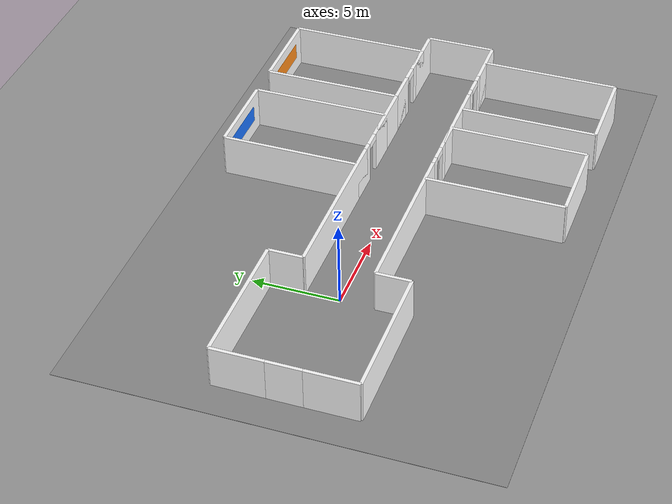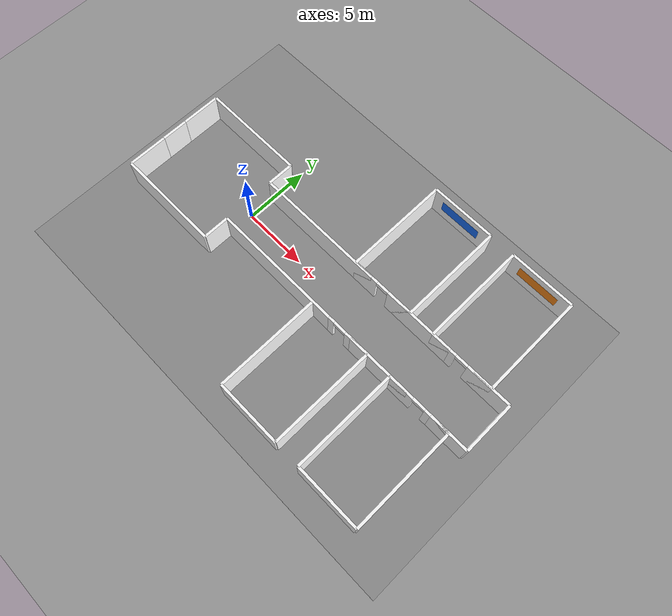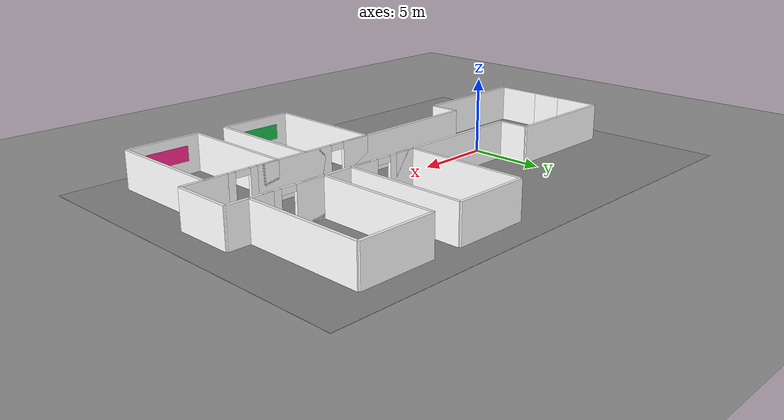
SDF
<sdf version="1.9">
 <world name="default">
  <model name="ground_plane">
   <static>1</static>
   <link name="link">
    <collision name="collision">
     <geometry><plane><normal>0 0 1</normal><size>100 100</size></plane></geometry>
     <surface>
      <contact><collide_bitmask>65535</collide_bitmask></contact>
      <friction><ode><mu>100</mu><mu2>50</mu2></ode></friction>
     </surface>
    </collision>
    <visual name="visual">
     <cast_shadows>0</cast_shadows>
     <geometry><plane><normal>0 0 1</normal><size>100 100</size></plane></geometry>
     <material><ambient>0.6 0.6 0.6 1</ambient><diffuse>0.6 0.6 0.6 1</diffuse></material>
    </visual>
   </link>
  </model>
  <model name="corridor_rooms">
   <static>true</static>
   <link name="link">
    <collision name="floor_col">
     <pose>7.0 0 0.01 0 0 0</pose>
     <geometry><box><size>34.0 24.0 0.02</size></box></geometry>
    </collision>
    <visual name="floor_vis">
     <pose>7.0 0 0.01 0 0 0</pose>
     <geometry><box><size>34.0 24.0 0.02</size></box></geometry>
     <material><ambient>0.55 0.55 0.55 1</ambient><diffuse>0.55 0.55 0.55 1</diffuse></material>
    </visual>
    <collision name="lobby_north_col">
     <pose>-4.0 4.0 1.25 0 0 0.0</pose>
     <geometry><box><size>8.0 0.2 2.5</size></box></geometry>
    </collision>
    <visual name="lobby_north_vis">
     <pose>-4.0 4.0 1.25 0 0 0.0</pose>
     <geometry><box><size>8.0 0.2 2.5</size></box></geometry>
     <material><ambient>1 1 1 1</ambient><diffuse>1 1 1 1</diffuse></material>
    </visual>
    <collision name="lobby_south_col">
     <pose>-4.0 -4.0 1.25 0 0 0.0</pose>
     <geometry><box><size>8.0 0.2 2.5</size></box></geometry>
    </collision>
    <visual name="lobby_south_vis">
     <pose>-4.0 -4.0 1.25 0 0 0.0</pose>
     <geometry><box><size>8.0 0.2 2.5</size></box></geometry>
     <material><ambient>1 1 1 1</ambient><diffuse>1 1 1 1</diffuse></material>
    </visual>
    <collision name="lobby_west_a_col">
     <pose>-8.0 2.5 1.25 0 0 0.0</pose>
     <geometry><box><size>0.2 3.0 2.5</size></box></geometry>
    </collision>
    <visual name="lobby_west_a_vis">
     <pose>-8.0 2.5 1.25 0 0 0.0</pose>
     <geometry><box><size>0.2 3.0 2.5</size></box></geometry>
     <material><ambient>1 1 1 1</ambient><diffuse>1 1 1 1</diffuse></material>
    </visual>
    <collision name="lobby_west_b_col">
     <pose>-8.0 -2.5 1.25 0 0 0.0</pose>
     <geometry><box><size>0.2 3.0 2.5</size></box></geometry>
    </collision>
    <visual name="lobby_west_b_vis">
     <pose>-8.0 -2.5 1.25 0 0 0.0</pose>
     <geometry><box><size>0.2 3.0 2.5</size></box></geometry>
     <material><ambient>1 1 1 1</ambient><diffuse>1 1 1 1</diffuse></material>
    </visual>
    <collision name="lobby_west_entrance_col">
     <pose>-8.0 0.0 1.25 0 0 0.0</pose>
     <geometry><box><size>0.2 2.0 2.5</size></box></geometry>
    </collision>
    <visual name="lobby_west_entrance_vis">
     <pose>-8.0 0.0 1.25 0 0 0.0</pose>
     <geometry><box><size>0.2 2.0 2.5</size></box></geometry>
     <material><ambient>1 1 1 1</ambient><diffuse>1 1 1 1</diffuse></material>
    </visual>
    <collision name="lobby_east_a_col">
     <pose>0.0 3.0 1.25 0 0 0.0</pose>
     <geometry><box><size>0.2 2.0 2.5</size></box></geometry>
    </collision>
    <visual name="lobby_east_a_vis">
     <pose>0.0 3.0 1.25 0 0 0.0</pose>
     <geometry><box><size>0.2 2.0 2.5</size></box></geometry>
     <material><ambient>1 1 1 1</ambient><diffuse>1 1 1 1</diffuse></material>
    </visual>
    <collision name="lobby_east_b_col">
     <pose>0.0 -3.0 1.25 0 0 0.0</pose>
     <geometry><box><size>0.2 2.0 2.5</size></box></geometry>
    </collision>
    <visual name="lobby_east_b_vis">
     <pose>0.0 -3.0 1.25 0 0 0.0</pose>
     <geometry><box><size>0.2 2.0 2.5</size></box></geometry>
     <material><ambient>1 1 1 1</ambient><diffuse>1 1 1 1</diffuse></material>
    </visual>
    <collision name="corridor_north_0_col">
     <pose>5.0 2.0 1.25 0 0 0.0</pose>
     <geometry><box><size>10.0 0.2 2.5</size></box></geometry>
    </collision>
    <visual name="corridor_north_0_vis">
     <pose>5.0 2.0 1.25 0 0 0.0</pose>
     <geometry><box><size>10.0 0.2 2.5</size></box></geometry>
     <material><ambient>1 1 1 1</ambient><diffuse>1 1 1 1</diffuse></material>
    </visual>
    <collision name="corridor_north_1_col">
     <pose>14.5 2.0 1.25 0 0 0.0</pose>
     <geometry><box><size>5.0 0.2 2.5</size></box></geometry>
    </collision>
    <visual name="corridor_north_1_vis">
     <pose>14.5 2.0 1.25 0 0 0.0</pose>
     <geometry><box><size>5.0 0.2 2.5</size></box></geometry>
     <material><ambient>1 1 1 1</ambient><diffuse>1 1 1 1</diffuse></material>
    </visual>
    <collision name="corridor_north_2_col">
     <pose>20.5 2.0 1.25 0 0 0.0</pose>
     <geometry><box><size>3.0 0.2 2.5</size></box></geometry>
    </collision>
    <visual name="corridor_north_2_vis">
     <pose>20.5 2.0 1.25 0 0 0.0</pose>
     <geometry><box><size>3.0 0.2 2.5</size></box></geometry>
     <material><ambient>1 1 1 1</ambient><diffuse>1 1 1 1</diffuse></material>
    </visual>
    <collision name="corridor_south_0_col">
     <pose>5.0 -2.0 1.25 0 0 0.0</pose>
     <geometry><box><size>10.0 0.2 2.5</size></box></geometry>
    </collision>
    <visual name="corridor_south_0_vis">
     <pose>5.0 -2.0 1.25 0 0 0.0</pose>
     <geometry><box><size>10.0 0.2 2.5</size></box></geometry>
     <material><ambient>1 1 1 1</ambient><diffuse>1 1 1 1</diffuse></material>
    </visual>
    <collision name="corridor_south_1_col">
     <pose>14.5 -2.0 1.25 0 0 0.0</pose>
     <geometry><box><size>5.0 0.2 2.5</size></box></geometry>
    </collision>
    <visual name="corridor_south_1_vis">
     <pose>14.5 -2.0 1.25 0 0 0.0</pose>
     <geometry><box><size>5.0 0.2 2.5</size></box></geometry>
     <material><ambient>1 1 1 1</ambient><diffuse>1 1 1 1</diffuse></material>
    </visual>
    <collision name="corridor_south_2_col">
     <pose>20.5 -2.0 1.25 0 0 0.0</pose>
     <geometry><box><size>3.0 0.2 2.5</size></box></geometry>
    </collision>
    <visual name="corridor_south_2_vis">
     <pose>20.5 -2.0 1.25 0 0 0.0</pose>
     <geometry><box><size>3.0 0.2 2.5</size></box></geometry>
     <material><ambient>1 1 1 1</ambient><diffuse>1 1 1 1</diffuse></material>
    </visual>
    <collision name="corridor_east_end_col">
     <pose>22.0 0.0 1.25 0 0 0.0</pose>
     <geometry><box><size>0.2 4.0 2.5</size></box></geometry>
    </collision>
    <visual name="corridor_east_end_vis">
     <pose>22.0 0.0 1.25 0 0 0.0</pose>
     <geometry><box><size>0.2 4.0 2.5</size></box></geometry>
     <material><ambient>1 1 1 1</ambient><diffuse>1 1 1 1</diffuse></material>
    </visual>
    <collision name="room_blue_doorwall_a_col">
     <pose>9.5 2.0 1.25 0 0 0.0</pose>
     <geometry><box><size>2.0 0.2 2.5</size></box></geometry>
    </collision>
    <visual name="room_blue_doorwall_a_vis">
     <pose>9.5 2.0 1.25 0 0 0.0</pose>
     <geometry><box><size>2.0 0.2 2.5</size></box></geometry>
     <material><ambient>1 1 1 1</ambient><diffuse>1 1 1 1</diffuse></material>
    </visual>
    <collision name="room_blue_doorwall_b_col">
     <pose>12.5 2.0 1.25 0 0 0.0</pose>
     <geometry><box><size>2.0 0.2 2.5</size></box></geometry>
    </collision>
    <visual name="room_blue_doorwall_b_vis">
     <pose>12.5 2.0 1.25 0 0 0.0</pose>
     <geometry><box><size>2.0 0.2 2.5</size></box></geometry>
     <material><ambient>1 1 1 1</ambient><diffuse>1 1 1 1</diffuse></material>
    </visual>
    <collision name="room_blue_backwall_col">
     <pose>11.0 10.0 1.25 0 0 0.0</pose>
     <geometry><box><size>5.0 0.2 2.5</size></box></geometry>
    </collision>
    <visual name="room_blue_backwall_vis">
     <pose>11.0 10.0 1.25 0 0 0.0</pose>
     <geometry><box><size>5.0 0.2 2.5</size></box></geometry>
     <material><ambient>1 1 1 1</ambient><diffuse>1 1 1 1</diffuse></material>
    </visual>
    <collision name="room_blue_sidewall_1_col">
     <pose>8.5 6.0 1.25 0 0 0.0</pose>
     <geometry><box><size>0.2 8.0 2.5</size></box></geometry>
    </collision>
    <visual name="room_blue_sidewall_1_vis">
     <pose>8.5 6.0 1.25 0 0 0.0</pose>
     <geometry><box><size>0.2 8.0 2.5</size></box></geometry>
     <material><ambient>1 1 1 1</ambient><diffuse>1 1 1 1</diffuse></material>
    </visual>
    <collision name="room_blue_sidewall_2_col">
     <pose>13.5 6.0 1.25 0 0 0.0</pose>
     <geometry><box><size>0.2 8.0 2.5</size></box></geometry>
    </collision>
    <visual name="room_blue_sidewall_2_vis">
     <pose>13.5 6.0 1.25 0 0 0.0</pose>
     <geometry><box><size>0.2 8.0 2.5</size></box></geometry>
     <material><ambient>1 1 1 1</ambient><diffuse>1 1 1 1</diffuse></material>
    </visual>
    <collision name="room_green_doorwall_a_col">
     <pose>9.5 -2.0 1.25 0 0 0.0</pose>
     <geometry><box><size>2.0 0.2 2.5</size></box></geometry>
    </collision>
    <visual name="room_green_doorwall_a_vis">
     <pose>9.5 -2.0 1.25 0 0 0.0</pose>
     <geometry><box><size>2.0 0.2 2.5</size></box></geometry>
     <material><ambient>1 1 1 1</ambient><diffuse>1 1 1 1</diffuse></material>
    </visual>
    <collision name="room_green_doorwall_b_col">
     <pose>12.5 -2.0 1.25 0 0 0.0</pose>
     <geometry><box><size>2.0 0.2 2.5</size></box></geometry>
    </collision>
    <visual name="room_green_doorwall_b_vis">
     <pose>12.5 -2.0 1.25 0 0 0.0</pose>
     <geometry><box><size>2.0 0.2 2.5</size></box></geometry>
     <material><ambient>1 1 1 1</ambient><diffuse>1 1 1 1</diffuse></material>
    </visual>
    <collision name="room_green_backwall_col">
     <pose>11.0 -10.0 1.25 0 0 0.0</pose>
     <geometry><box><size>5.0 0.2 2.5</size></box></geometry>
    </collision>
    <visual name="room_green_backwall_vis">
     <pose>11.0 -10.0 1.25 0 0 0.0</pose>
     <geometry><box><size>5.0 0.2 2.5</size></box></geometry>
     <material><ambient>1 1 1 1</ambient><diffuse>1 1 1 1</diffuse></material>
    </visual>
    <collision name="room_green_sidewall_1_col">
     <pose>8.5 -6.0 1.25 0 0 0.0</pose>
     <geometry><box><size>0.2 8.0 2.5</size></box></geometry>
    </collision>
    <visual name="room_green_sidewall_1_vis">
     <pose>8.5 -6.0 1.25 0 0 0.0</pose>
     <geometry><box><size>0.2 8.0 2.5</size></box></geometry>
     <material><ambient>1 1 1 1</ambient><diffuse>1 1 1 1</diffuse></material>
    </visual>
    <collision name="room_green_sidewall_2_col">
     <pose>13.5 -6.0 1.25 0 0 0.0</pose>
     <geometry><box><size>0.2 8.0 2.5</size></box></geometry>
    </collision>
    <visual name="room_green_sidewall_2_vis">
     <pose>13.5 -6.0 1.25 0 0 0.0</pose>
     <geometry><box><size>0.2 8.0 2.5</size></box></geometry>
     <material><ambient>1 1 1 1</ambient><diffuse>1 1 1 1</diffuse></material>
    </visual>
    <collision name="room_orange_doorwall_a_col">
     <pose>16.5 2.0 1.25 0 0 0.0</pose>
     <geometry><box><size>2.0 0.2 2.5</size></box></geometry>
    </collision>
    <visual name="room_orange_doorwall_a_vis">
     <pose>16.5 2.0 1.25 0 0 0.0</pose>
     <geometry><box><size>2.0 0.2 2.5</size></box></geometry>
     <material><ambient>1 1 1 1</ambient><diffuse>1 1 1 1</diffuse></material>
    </visual>
    <collision name="room_orange_doorwall_b_col">
     <pose>19.5 2.0 1.25 0 0 0.0</pose>
     <geometry><box><size>2.0 0.2 2.5</size></box></geometry>
    </collision>
    <visual name="room_orange_doorwall_b_vis">
     <pose>19.5 2.0 1.25 0 0 0.0</pose>
     <geometry><box><size>2.0 0.2 2.5</size></box></geometry>
     <material><ambient>1 1 1 1</ambient><diffuse>1 1 1 1</diffuse></material>
    </visual>
    <collision name="room_orange_backwall_col">
     <pose>18.0 10.0 1.25 0 0 0.0</pose>
     <geometry><box><size>5.0 0.2 2.5</size></box></geometry>
    </collision>
    <visual name="room_orange_backwall_vis">
     <pose>18.0 10.0 1.25 0 0 0.0</pose>
     <geometry><box><size>5.0 0.2 2.5</size></box></geometry>
     <material><ambient>1 1 1 1</ambient><diffuse>1 1 1 1</diffuse></material>
    </visual>
    <collision name="room_orange_sidewall_1_col">
     <pose>15.5 6.0 1.25 0 0 0.0</pose>
     <geometry><box><size>0.2 8.0 2.5</size></box></geometry>
    </collision>
    <visual name="room_orange_sidewall_1_vis">
     <pose>15.5 6.0 1.25 0 0 0.0</pose>
     <geometry><box><size>0.2 8.0 2.5</size></box></geometry>
     <material><ambient>1 1 1 1</ambient><diffuse>1 1 1 1</diffuse></material>
    </visual>
    <collision name="room_orange_sidewall_2_col">
     <pose>20.5 6.0 1.25 0 0 0.0</pose>
     <geometry><box><size>0.2 8.0 2.5</size></box></geometry>
    </collision>
    <visual name="room_orange_sidewall_2_vis">
     <pose>20.5 6.0 1.25 0 0 0.0</pose>
     <geometry><box><size>0.2 8.0 2.5</size></box></geometry>
     <material><ambient>1 1 1 1</ambient><diffuse>1 1 1 1</diffuse></material>
    </visual>
    <collision name="room_pink_doorwall_a_col">
     <pose>16.5 -2.0 1.25 0 0 0.0</pose>
     <geometry><box><size>2.0 0.2 2.5</size></box></geometry>
    </collision>
    <visual name="room_pink_doorwall_a_vis">
     <pose>16.5 -2.0 1.25 0 0 0.0</pose>
     <geometry><box><size>2.0 0.2 2.5</size></box></geometry>
     <material><ambient>1 1 1 1</ambient><diffuse>1 1 1 1</diffuse></material>
    </visual>
    <collision name="room_pink_doorwall_b_col">
     <pose>19.5 -2.0 1.25 0 0 0.0</pose>
     <geometry><box><size>2.0 0.2 2.5</size></box></geometry>
    </collision>
    <visual name="room_pink_doorwall_b_vis">
     <pose>19.5 -2.0 1.25 0 0 0.0</pose>
     <geometry><box><size>2.0 0.2 2.5</size></box></geometry>
     <material><ambient>1 1 1 1</ambient><diffuse>1 1 1 1</diffuse></material>
    </visual>
    <collision name="room_pink_backwall_col">
     <pose>18.0 -10.0 1.25 0 0 0.0</pose>
     <geometry><box><size>5.0 0.2 2.5</size></box></geometry>
    </collision>
    <visual name="room_pink_backwall_vis">
     <pose>18.0 -10.0 1.25 0 0 0.0</pose>
     <geometry><box><size>5.0 0.2 2.5</size></box></geometry>
     <material><ambient>1 1 1 1</ambient><diffuse>1 1 1 1</diffuse></material>
    </visual>
    <collision name="room_pink_sidewall_1_col">
     <pose>15.5 -6.0 1.25 0 0 0.0</pose>
     <geometry><box><size>0.2 8.0 2.5</size></box></geometry>
    </collision>
    <visual name="room_pink_sidewall_1_vis">
     <pose>15.5 -6.0 1.25 0 0 0.0</pose>
     <geometry><box><size>0.2 8.0 2.5</size></box></geometry>
     <material><ambient>1 1 1 1</ambient><diffuse>1 1 1 1</diffuse></material>
    </visual>
    <collision name="room_pink_sidewall_2_col">
     <pose>20.5 -6.0 1.25 0 0 0.0</pose>
     <geometry><box><size>0.2 8.0 2.5</size></box></geometry>
    </collision>
    <visual name="room_pink_sidewall_2_vis">
     <pose>20.5 -6.0 1.25 0 0 0.0</pose>
     <geometry><box><size>0.2 8.0 2.5</size></box></geometry>
     <material><ambient>1 1 1 1</ambient><diffuse>1 1 1 1</diffuse></material>
    </visual>
    <visual name="plate_blue_vis">
     <pose>11.0 9.89 1.375 1.5708 0 0.0</pose>
     <geometry><plane><size>3.25 1.0</size></plane></geometry>
     <material><ambient>0.1 0.45 1 1</ambient><diffuse>0.1 0.45 1 1</diffuse></material>
    </visual>
    <visual name="plate_green_vis">
     <pose>11.0 -9.89 1.375 1.5708 0 3.14159265</pose>
     <geometry><plane><size>3.25 1.0</size></plane></geometry>
     <material><ambient>0.1 0.75 0.3 1</ambient><diffuse>0.1 0.75 0.3 1</diffuse></material>
    </visual>
    <visual name="plate_orange_vis">
     <pose>18.0 9.89 1.375 1.5708 0 0.0</pose>
     <geometry><plane><size>3.25 1.0</size></plane></geometry>
     <material><ambient>1 0.55 0.1 1</ambient><diffuse>1 0.55 0.1 1</diffuse></material>
    </visual>
    <visual name="plate_pink_vis">
     <pose>18.0 -9.89 1.375 1.5708 0 3.14159265</pose>
     <geometry><plane><size>3.25 1.0</size></plane></geometry>
     <material><ambient>1 0.15 0.55 1</ambient><diffuse>1 0.15 0.55 1</diffuse></material>
    </visual>
   </link>
   <link name="lintels">
    <collision name="lintel_blue_col">
     <pose>11 2.0 2.3 0 0 0</pose>
     <geometry><box><size>1.0 0.2 0.4</size></box></geometry>
    </collision>
    <visual name="lintel_blue_vis">
     <pose>11 2.0 2.3 0 0 0</pose>
     <geometry><box><size>1.0 0.2 0.4</size></box></geometry>
     <material><ambient>1 1 1 1</ambient><diffuse>1 1 1 1</diffuse></material>
    </visual>
    <collision name="lintel_green_col">
     <pose>11 -2.0 2.3 0 0 0</pose>
     <geometry><box><size>1.0 0.2 0.4</size></box></geometry>
    </collision>
    <visual name="lintel_green_vis">
     <pose>11 -2.0 2.3 0 0 0</pose>
     <geometry><box><size>1.0 0.2 0.4</size></box></geometry>
     <material><ambient>1 1 1 1</ambient><diffuse>1 1 1 1</diffuse></material>
    </visual>
    <collision name="lintel_orange_col">
     <pose>18 2.0 2.3 0 0 0</pose>
     <geometry><box><size>1.0 0.2 0.4</size></box></geometry>
    </collision>
    <visual name="lintel_orange_vis">
     <pose>18 2.0 2.3 0 0 0</pose>
     <geometry><box><size>1.0 0.2 0.4</size></box></geometry>
     <material><ambient>1 1 1 1</ambient><diffuse>1 1 1 1</diffuse></material>
    </visual>
    <collision name="lintel_pink_col">
     <pose>18 -2.0 2.3 0 0 0</pose>
     <geometry><box><size>1.0 0.2 0.4</size></box></geometry>
    </collision>
    <visual name="lintel_pink_vis">
     <pose>18 -2.0 2.3 0 0 0</pose>
     <geometry><box><size>1.0 0.2 0.4</size></box></geometry>
     <material><ambient>1 1 1 1</ambient><diffuse>1 1 1 1</diffuse></material>
    </visual>
   </link>
  </model>
 </world>
</sdf>
